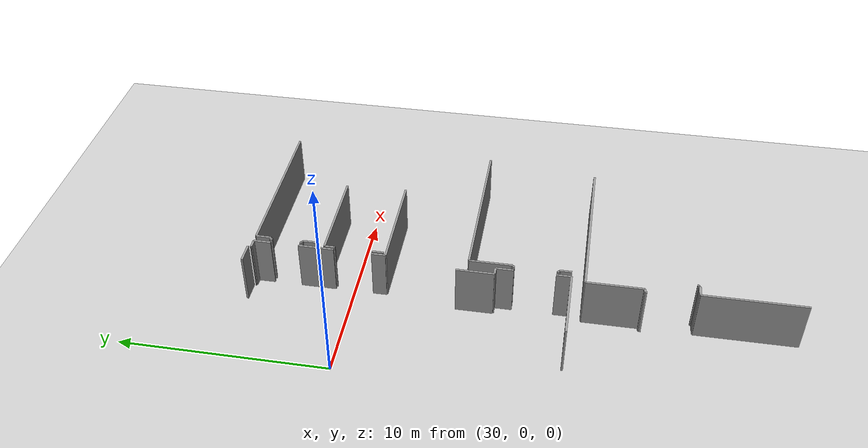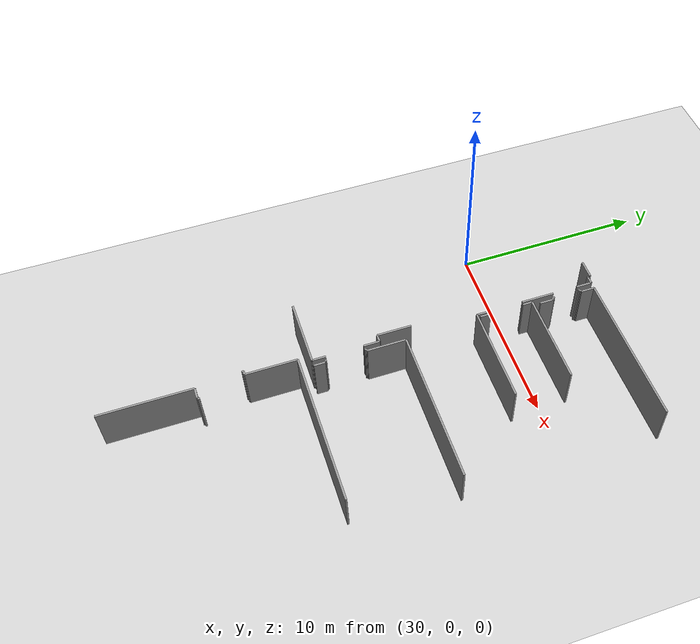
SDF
<sdf version="1.6">
 <world name="default">
  <model name="ground_plane">
   <static>1</static>
   <link name="link">
    <collision name="collision">
     <geometry><plane><normal>0 0 1</normal><size>100 100</size></plane></geometry>
     <surface><friction><ode><mu>100</mu><mu2>50</mu2></ode></friction></surface>
    </collision>
    <visual name="visual">
     <cast_shadows>0</cast_shadows>
     <geometry><plane><normal>0 0 1</normal><size>100 100</size></plane></geometry>
     <material>
      <script><uri>file://media/materials/scripts/gazebo.material</uri><name>Gazebo/Grey</name></script>
     </material>
    </visual>
   </link>
  </model>
  <model name="50055638">
   <static>1</static>
   <link name="Wall_280">
    <collision name="Wall_280_Collision">
     <geometry><box><size>1.80466322231 0.1 2.5</size></box></geometry>
     <pose>0.902331611157 0 1.25 0 0 0</pose>
    </collision>
    <visual name="Wall_280_Visual">
     <pose>0.902331611157 0 1.25 0 0 0</pose>
     <geometry><box><size>1.80466322231 0.1 2.5</size></box></geometry>
     <material>
      <script><uri>file://media/materials/scripts/gazebo.material</uri><name>Gazebo/Grey</name></script>
      <ambient>1 1 1 1</ambient>
     </material>
    </visual>
    <pose>105.416023233 -25.8159368069 0 0 0 -1.57079632679</pose>
   </link>
   <link name="Wall_281">
    <collision name="Wall_281_Collision">
     <geometry><box><size>0.398451947458 0.1 2.5</size></box></geometry>
     <pose>0.199225973729 0 1.25 0 0 0</pose>
    </collision>
    <visual name="Wall_281_Visual">
     <pose>0.199225973729 0 1.25 0 0 0</pose>
     <geometry><box><size>0.398451947458 0.1 2.5</size></box></geometry>
     <material>
      <script><uri>file://media/materials/scripts/gazebo.material</uri><name>Gazebo/Grey</name></script>
      <ambient>1 1 1 1</ambient>
     </material>
    </visual>
    <pose>105.416023233 -27.6206000292 0 0 0 0.0</pose>
   </link>
   <link name="Wall_282">
    <collision name="Wall_282_Collision">
     <geometry><box><size>0.851683094072 0.1 2.5</size></box></geometry>
     <pose>0.425841547036 0 1.25 0 0 0</pose>
    </collision>
    <visual name="Wall_282_Visual">
     <pose>0.425841547036 0 1.25 0 0 0</pose>
     <geometry><box><size>0.851683094072 0.1 2.5</size></box></geometry>
     <material>
      <script><uri>file://media/materials/scripts/gazebo.material</uri><name>Gazebo/Grey</name></script>
      <ambient>1 1 1 1</ambient>
     </material>
    </visual>
    <pose>105.814475181 -27.6206000292 0 0 0 -1.57079632679</pose>
   </link>
   <link name="Wall_283">
    <collision name="Wall_283_Collision">
     <geometry><box><size>0.707681162183 0.1 2.5</size></box></geometry>
     <pose>0.353840581092 0 1.25 0 0 0</pose>
    </collision>
    <visual name="Wall_283_Visual">
     <pose>0.353840581092 0 1.25 0 0 0</pose>
     <geometry><box><size>0.707681162183 0.1 2.5</size></box></geometry>
     <material>
      <script><uri>file://media/materials/scripts/gazebo.material</uri><name>Gazebo/Grey</name></script>
      <ambient>1 1 1 1</ambient>
     </material>
    </visual>
    <pose>105.814475181 -30.4191689068 0 0 0 -1.57079632679</pose>
   </link>
   <link name="Wall_284">
    <collision name="Wall_284_Collision">
     <geometry><box><size>3.56064794514 0.1 2.5</size></box></geometry>
     <pose>1.78032397257 0 1.25 0 0 0</pose>
    </collision>
    <visual name="Wall_284_Visual">
     <pose>1.78032397257 0 1.25 0 0 0</pose>
     <geometry><box><size>3.56064794514 0.1 2.5</size></box></geometry>
     <material>
      <script><uri>file://media/materials/scripts/gazebo.material</uri><name>Gazebo/Grey</name></script>
      <ambient>1 1 1 1</ambient>
     </material>
    </visual>
    <pose>105.814475181 -31.126850069 0 0 0 3.14159265359</pose>
   </link>
   <link name="Wall_479">
    <collision name="Wall_479_Collision">
     <geometry><box><size>4.81434172815 0.1 2.5</size></box></geometry>
     <pose>2.40717086408 0 1.25 0 0 0</pose>
    </collision>
    <visual name="Wall_479_Visual">
     <pose>2.40717086408 0 1.25 0 0 0</pose>
     <geometry><box><size>4.81434172815 0.1 2.5</size></box></geometry>
     <material>
      <script><uri>file://media/materials/scripts/gazebo.material</uri><name>Gazebo/Grey</name></script>
      <ambient>1 1 1 1</ambient>
     </material>
    </visual>
    <pose>105.537401737 -41.733170648 0 0 0 1.57079632679</pose>
   </link>
   <link name="Wall_480">
    <collision name="Wall_480_Collision">
     <geometry><box><size>0.582362623047 0.1 2.5</size></box></geometry>
     <pose>0.291181311523 0 1.25 0 0 0</pose>
    </collision>
    <visual name="Wall_480_Visual">
     <pose>0.291181311523 0 1.25 0 0 0</pose>
     <geometry><box><size>0.582362623047 0.1 2.5</size></box></geometry>
     <material>
      <script><uri>file://media/materials/scripts/gazebo.material</uri><name>Gazebo/Grey</name></script>
      <ambient>1 1 1 1</ambient>
     </material>
    </visual>
    <pose>105.537401737 -36.9188289199 0 0 0 0.0</pose>
   </link>
   <link name="Wall_481">
    <collision name="Wall_481_Collision">
     <geometry><box><size>0.0690141650621 0.1 2.5</size></box></geometry>
     <pose>0.034507082531 0 1.25 0 0 0</pose>
    </collision>
    <visual name="Wall_481_Visual">
     <pose>0.034507082531 0 1.25 0 0 0</pose>
     <geometry><box><size>0.0690141650621 0.1 2.5</size></box></geometry>
     <material>
      <script><uri>file://media/materials/scripts/gazebo.material</uri><name>Gazebo/Grey</name></script>
      <ambient>1 1 1 1</ambient>
     </material>
    </visual>
    <pose>106.11976436 -36.9188289199 0 0 0 1.57079632679</pose>
   </link>
   <link name="Wall_482">
    <collision name="Wall_482_Collision">
     <geometry><box><size>0.100534446711 0.1 2.5</size></box></geometry>
     <pose>0.0502672233555 0 1.25 0 0 0</pose>
    </collision>
    <visual name="Wall_482_Visual">
     <pose>0.0502672233555 0 1.25 0 0 0</pose>
     <geometry><box><size>0.100534446711 0.1 2.5</size></box></geometry>
     <material>
      <script><uri>file://media/materials/scripts/gazebo.material</uri><name>Gazebo/Grey</name></script>
      <ambient>1 1 1 1</ambient>
     </material>
    </visual>
    <pose>106.11976436 -36.8498147548 0 0 0 0.0</pose>
   </link>
   <link name="Wall_492">
    <collision name="Wall_492_Collision">
     <geometry><box><size>0.100280250891 0.1 2.5</size></box></geometry>
     <pose>0.0501401254456 0 1.25 0 0 0</pose>
    </collision>
    <visual name="Wall_492_Visual">
     <pose>0.0501401254456 0 1.25 0 0 0</pose>
     <geometry><box><size>0.100280250891 0.1 2.5</size></box></geometry>
     <material>
      <script><uri>file://media/materials/scripts/gazebo.material</uri><name>Gazebo/Grey</name></script>
      <ambient>1 1 1 1</ambient>
     </material>
    </visual>
    <pose>105.342179348 -34.555061992 0 0 0 1.57079632679</pose>
   </link>
   <link name="Wall_493">
    <collision name="Wall_493_Collision">
     <geometry><box><size>0.194459802109 0.1 2.5</size></box></geometry>
     <pose>0.0972299010543 0 1.25 0 0 0</pose>
    </collision>
    <visual name="Wall_493_Visual">
     <pose>0.0972299010543 0 1.25 0 0 0</pose>
     <geometry><box><size>0.194459802109 0.1 2.5</size></box></geometry>
     <material>
      <script><uri>file://media/materials/scripts/gazebo.material</uri><name>Gazebo/Grey</name></script>
      <ambient>1 1 1 1</ambient>
     </material>
    </visual>
    <pose>105.342179348 -34.4547817411 0 0 0 0.0</pose>
   </link>
   <link name="Wall_494">
    <collision name="Wall_494_Collision">
     <geometry><box><size>2.68557883566 0.1 2.5</size></box></geometry>
     <pose>1.34278941783 0 1.25 0 0 0</pose>
    </collision>
    <visual name="Wall_494_Visual">
     <pose>1.34278941783 0 1.25 0 0 0</pose>
     <geometry><box><size>2.68557883566 0.1 2.5</size></box></geometry>
     <material>
      <script><uri>file://media/materials/scripts/gazebo.material</uri><name>Gazebo/Grey</name></script>
      <ambient>1 1 1 1</ambient>
     </material>
    </visual>
    <pose>105.53663915 -34.4547817411 0 0 0 1.57079632679</pose>
   </link>
   <link name="Wall_495">
    <collision name="Wall_495_Collision">
     <geometry><box><size>8.06029524844 0.1 2.5</size></box></geometry>
     <pose>4.03014762422 0 1.25 0 0 0</pose>
    </collision>
    <visual name="Wall_495_Visual">
     <pose>4.03014762422 0 1.25 0 0 0</pose>
     <geometry><box><size>8.06029524844 0.1 2.5</size></box></geometry>
     <material>
      <script><uri>file://media/materials/scripts/gazebo.material</uri><name>Gazebo/Grey</name></script>
      <ambient>1 1 1 1</ambient>
     </material>
    </visual>
    <pose>105.53663915 -31.7692029055 0 0 0 0.0</pose>
   </link>
   <link name="Wall_500">
    <collision name="Wall_500_Collision">
     <geometry><box><size>0.582489720957 0.1 2.5</size></box></geometry>
     <pose>0.291244860478 0 1.25 0 0 0</pose>
    </collision>
    <visual name="Wall_500_Visual">
     <pose>0.291244860478 0 1.25 0 0 0</pose>
     <geometry><box><size>0.582489720957 0.1 2.5</size></box></geometry>
     <material>
      <script><uri>file://media/materials/scripts/gazebo.material</uri><name>Gazebo/Grey</name></script>
      <ambient>1 1 1 1</ambient>
     </material>
    </visual>
    <pose>106.144167159 -31.1263416773 0 0 0 1.57079632679</pose>
   </link>
   <link name="Wall_501">
    <collision name="Wall_501_Collision">
     <geometry><box><size>0.0879517536334 0.1 2.5</size></box></geometry>
     <pose>0.0439758768167 0 1.25 0 0 0</pose>
    </collision>
    <visual name="Wall_501_Visual">
     <pose>0.0439758768167 0 1.25 0 0 0</pose>
     <geometry><box><size>0.0879517536334 0.1 2.5</size></box></geometry>
     <material>
      <script><uri>file://media/materials/scripts/gazebo.material</uri><name>Gazebo/Grey</name></script>
      <ambient>1 1 1 1</ambient>
     </material>
    </visual>
    <pose>106.144167159 -30.5438519564 0 0 0 3.14159265359</pose>
   </link>
   <link name="Wall_502">
    <collision name="Wall_502_Collision">
     <geometry><box><size>0.104347384007 0.1 2.5</size></box></geometry>
     <pose>0.0521736920036 0 1.25 0 0 0</pose>
    </collision>
    <visual name="Wall_502_Visual">
     <pose>0.0521736920036 0 1.25 0 0 0</pose>
     <geometry><box><size>0.104347384007 0.1 2.5</size></box></geometry>
     <material>
      <script><uri>file://media/materials/scripts/gazebo.material</uri><name>Gazebo/Grey</name></script>
      <ambient>1 1 1 1</ambient>
     </material>
    </visual>
    <pose>106.056215406 -30.5438519564 0 0 0 1.57079632679</pose>
   </link>
   <link name="Wall_503">
    <collision name="Wall_503_Collision">
     <geometry><box><size>0.10116993626 0.1 2.5</size></box></geometry>
     <pose>0.0505849681302 0 1.25 0 0 0</pose>
    </collision>
    <visual name="Wall_503_Visual">
     <pose>0.0505849681302 0 1.25 0 0 0</pose>
     <geometry><box><size>0.10116993626 0.1 2.5</size></box></geometry>
     <material>
      <script><uri>file://media/materials/scripts/gazebo.material</uri><name>Gazebo/Grey</name></script>
      <ambient>1 1 1 1</ambient>
     </material>
    </visual>
    <pose>106.056215406 -28.4792735083 0 0 0 1.57079632679</pose>
   </link>
   <link name="Wall_504">
    <collision name="Wall_504_Collision">
     <geometry><box><size>0.0901124181013 0.1 2.5</size></box></geometry>
     <pose>0.0450562090506 0 1.25 0 0 0</pose>
    </collision>
    <visual name="Wall_504_Visual">
     <pose>0.0450562090506 0 1.25 0 0 0</pose>
     <geometry><box><size>0.0901124181013 0.1 2.5</size></box></geometry>
     <material>
      <script><uri>file://media/materials/scripts/gazebo.material</uri><name>Gazebo/Grey</name></script>
      <ambient>1 1 1 1</ambient>
     </material>
    </visual>
    <pose>106.056215406 -28.3781035721 0 0 0 0.0</pose>
   </link>
   <link name="Wall_505">
    <collision name="Wall_505_Collision">
     <geometry><box><size>2.04665764272 0.1 2.5</size></box></geometry>
     <pose>1.02332882136 0 1.25 0 0 0</pose>
    </collision>
    <visual name="Wall_505_Visual">
     <pose>1.02332882136 0 1.25 0 0 0</pose>
     <geometry><box><size>2.04665764272 0.1 2.5</size></box></geometry>
     <material>
      <script><uri>file://media/materials/scripts/gazebo.material</uri><name>Gazebo/Grey</name></script>
      <ambient>1 1 1 1</ambient>
     </material>
    </visual>
    <pose>106.146327824 -28.3781035721 0 0 0 1.57079632679</pose>
   </link>
   <link name="Wall_506">
    <collision name="Wall_506_Collision">
     <geometry><box><size>8.0377989184 0.1 2.5</size></box></geometry>
     <pose>4.0188994592 0 1.25 0 0 0</pose>
    </collision>
    <visual name="Wall_506_Visual">
     <pose>4.0188994592 0 1.25 0 0 0</pose>
     <geometry><box><size>8.0377989184 0.1 2.5</size></box></geometry>
     <material>
      <script><uri>file://media/materials/scripts/gazebo.material</uri><name>Gazebo/Grey</name></script>
      <ambient>1 1 1 1</ambient>
     </material>
    </visual>
    <pose>106.146327824 -26.3314459294 0 0 0 0.0</pose>
   </link>
   <link name="Wall_514">
    <collision name="Wall_514_Collision">
     <geometry><box><size>0.0319015753786 0.1 2.5</size></box></geometry>
     <pose>0.0159507876893 0 1.25 0 0 0</pose>
    </collision>
    <visual name="Wall_514_Visual">
     <pose>0.0159507876893 0 1.25 0 0 0</pose>
     <geometry><box><size>0.0319015753786 0.1 2.5</size></box></geometry>
     <material>
      <script><uri>file://media/materials/scripts/gazebo.material</uri><name>Gazebo/Grey</name></script>
      <ambient>1 1 1 1</ambient>
     </material>
    </visual>
    <pose>105.433562745 -15.9922851569 0 0 0 -1.57079632679</pose>
   </link>
   <link name="Wall_515">
    <collision name="Wall_515_Collision">
     <geometry><box><size>0.429082543738 0.1 2.5</size></box></geometry>
     <pose>0.214541271869 0 1.25 0 0 0</pose>
    </collision>
    <visual name="Wall_515_Visual">
     <pose>0.214541271869 0 1.25 0 0 0</pose>
     <geometry><box><size>0.429082543738 0.1 2.5</size></box></geometry>
     <material>
      <script><uri>file://media/materials/scripts/gazebo.material</uri><name>Gazebo/Grey</name></script>
      <ambient>1 1 1 1</ambient>
     </material>
    </visual>
    <pose>105.433562745 -16.0241867322 0 0 0 0.0</pose>
   </link>
   <link name="Wall_516">
    <collision name="Wall_516_Collision">
     <geometry><box><size>0.836304246977 0.1 2.5</size></box></geometry>
     <pose>0.418152123488 0 1.25 0 0 0</pose>
    </collision>
    <visual name="Wall_516_Visual">
     <pose>0.418152123488 0 1.25 0 0 0</pose>
     <geometry><box><size>0.836304246977 0.1 2.5</size></box></geometry>
     <material>
      <script><uri>file://media/materials/scripts/gazebo.material</uri><name>Gazebo/Grey</name></script>
      <ambient>1 1 1 1</ambient>
     </material>
    </visual>
    <pose>105.862645289 -16.0241867322 0 0 0 -1.57079632679</pose>
   </link>
   <link name="Wall_517">
    <collision name="Wall_517_Collision">
     <geometry><box><size>1.72840447639 0.1 2.5</size></box></geometry>
     <pose>0.864202238194 0 1.25 0 0 0</pose>
    </collision>
    <visual name="Wall_517_Visual">
     <pose>0.864202238194 0 1.25 0 0 0</pose>
     <geometry><box><size>1.72840447639 0.1 2.5</size></box></geometry>
     <material>
      <script><uri>file://media/materials/scripts/gazebo.material</uri><name>Gazebo/Grey</name></script>
      <ambient>1 1 1 1</ambient>
     </material>
    </visual>
    <pose>105.862645289 -18.194891935 0 0 0 -1.57079632679</pose>
   </link>
   <link name="Wall_518">
    <collision name="Wall_518_Collision">
     <geometry><box><size>0.675652488895 0.1 2.5</size></box></geometry>
     <pose>0.337826244447 0 1.25 0 0 0</pose>
    </collision>
    <visual name="Wall_518_Visual">
     <pose>0.337826244447 0 1.25 0 0 0</pose>
     <geometry><box><size>0.675652488895 0.1 2.5</size></box></geometry>
     <material>
      <script><uri>file://media/materials/scripts/gazebo.material</uri><name>Gazebo/Grey</name></script>
      <ambient>1 1 1 1</ambient>
     </material>
    </visual>
    <pose>105.862645289 -21.7442281662 0 0 0 -1.57079632679</pose>
   </link>
   <link name="Wall_519">
    <collision name="Wall_519_Collision">
     <geometry><box><size>5.06561429597 0.1 2.5</size></box></geometry>
     <pose>2.53280714799 0 1.25 0 0 0</pose>
    </collision>
    <visual name="Wall_519_Visual">
     <pose>2.53280714799 0 1.25 0 0 0</pose>
     <geometry><box><size>5.06561429597 0.1 2.5</size></box></geometry>
     <material>
      <script><uri>file://media/materials/scripts/gazebo.material</uri><name>Gazebo/Grey</name></script>
      <ambient>1 1 1 1</ambient>
     </material>
    </visual>
    <pose>105.862645289 -22.4198806551 0 0 0 0.0</pose>
   </link>
   <link name="Wall_525">
    <collision name="Wall_525_Collision">
     <geometry><box><size>0.552367516316 0.1 2.5</size></box></geometry>
     <pose>0.276183758158 0 1.25 0 0 0</pose>
    </collision>
    <visual name="Wall_525_Visual">
     <pose>0.276183758158 0 1.25 0 0 0</pose>
     <geometry><box><size>0.552367516316 0.1 2.5</size></box></geometry>
     <material>
      <script><uri>file://media/materials/scripts/gazebo.material</uri><name>Gazebo/Grey</name></script>
      <ambient>1 1 1 1</ambient>
     </material>
    </visual>
    <pose>106.03041453 -22.2960872908 0 0 0 1.57079632679</pose>
   </link>
   <link name="Wall_526">
    <collision name="Wall_526_Collision">
     <geometry><box><size>0.523516290775 0.1 2.5</size></box></geometry>
     <pose>0.261758145387 0 1.25 0 0 0</pose>
    </collision>
    <visual name="Wall_526_Visual">
     <pose>0.261758145387 0 1.25 0 0 0</pose>
     <geometry><box><size>0.523516290775 0.1 2.5</size></box></geometry>
     <material>
      <script><uri>file://media/materials/scripts/gazebo.material</uri><name>Gazebo/Grey</name></script>
      <ambient>1 1 1 1</ambient>
     </material>
    </visual>
    <pose>106.03041453 -19.9618070781 0 0 0 1.57079632679</pose>
   </link>
   <link name="Wall_527">
    <collision name="Wall_527_Collision">
     <geometry><box><size>4.75257214395 0.1 2.5</size></box></geometry>
     <pose>2.37628607198 0 1.25 0 0 0</pose>
    </collision>
    <visual name="Wall_527_Visual">
     <pose>2.37628607198 0 1.25 0 0 0</pose>
     <geometry><box><size>4.75257214395 0.1 2.5</size></box></geometry>
     <material>
      <script><uri>file://media/materials/scripts/gazebo.material</uri><name>Gazebo/Grey</name></script>
      <ambient>1 1 1 1</ambient>
     </material>
    </visual>
    <pose>106.03041453 -19.4382907873 0 0 0 0.0</pose>
   </link>
   <link name="Wall_531">
    <collision name="Wall_531_Collision">
     <geometry><box><size>0.739328541742 0.1 2.5</size></box></geometry>
     <pose>0.369664270871 0 1.25 0 0 0</pose>
    </collision>
    <visual name="Wall_531_Visual">
     <pose>0.369664270871 0 1.25 0 0 0</pose>
     <geometry><box><size>0.739328541742 0.1 2.5</size></box></geometry>
     <material>
      <script><uri>file://media/materials/scripts/gazebo.material</uri><name>Gazebo/Grey</name></script>
      <ambient>1 1 1 1</ambient>
     </material>
    </visual>
    <pose>106.228433073 -19.0702152403 0 0 0 1.57079632679</pose>
   </link>
   <link name="Wall_532">
    <collision name="Wall_532_Collision">
     <geometry><box><size>0.119980426922 0.1 2.5</size></box></geometry>
     <pose>0.0599902134609 0 1.25 0 0 0</pose>
    </collision>
    <visual name="Wall_532_Visual">
     <pose>0.0599902134609 0 1.25 0 0 0</pose>
     <geometry><box><size>0.119980426922 0.1 2.5</size></box></geometry>
     <material>
      <script><uri>file://media/materials/scripts/gazebo.material</uri><name>Gazebo/Grey</name></script>
      <ambient>1 1 1 1</ambient>
     </material>
    </visual>
    <pose>106.228433073 -18.3308866986 0 0 0 3.14159265359</pose>
   </link>
   <link name="Wall_533">
    <collision name="Wall_533_Collision">
     <geometry><box><size>0.113752629338 0.1 2.5</size></box></geometry>
     <pose>0.056876314669 0 1.25 0 0 0</pose>
    </collision>
    <visual name="Wall_533_Visual">
     <pose>0.056876314669 0 1.25 0 0 0</pose>
     <geometry><box><size>0.113752629338 0.1 2.5</size></box></geometry>
     <material>
      <script><uri>file://media/materials/scripts/gazebo.material</uri><name>Gazebo/Grey</name></script>
      <ambient>1 1 1 1</ambient>
     </material>
    </visual>
    <pose>106.108452646 -18.3308866986 0 0 0 1.57079632679</pose>
   </link>
   <link name="Wall_534">
    <collision name="Wall_534_Collision">
     <geometry><box><size>0.11222745442 0.1 2.5</size></box></geometry>
     <pose>0.0561137272098 0 1.25 0 0 0</pose>
    </collision>
    <visual name="Wall_534_Visual">
     <pose>0.0561137272098 0 1.25 0 0 0</pose>
     <geometry><box><size>0.11222745442 0.1 2.5</size></box></geometry>
     <material>
      <script><uri>file://media/materials/scripts/gazebo.material</uri><name>Gazebo/Grey</name></script>
      <ambient>1 1 1 1</ambient>
     </material>
    </visual>
    <pose>106.108452646 -16.8747259451 0 0 0 1.57079632679</pose>
   </link>
   <link name="Wall_535">
    <collision name="Wall_535_Collision">
     <geometry><box><size>0.114515216797 0.1 2.5</size></box></geometry>
     <pose>0.0572576083986 0 1.25 0 0 0</pose>
    </collision>
    <visual name="Wall_535_Visual">
     <pose>0.0572576083986 0 1.25 0 0 0</pose>
     <geometry><box><size>0.114515216797 0.1 2.5</size></box></geometry>
     <material>
      <script><uri>file://media/materials/scripts/gazebo.material</uri><name>Gazebo/Grey</name></script>
      <ambient>1 1 1 1</ambient>
     </material>
    </visual>
    <pose>106.108452646 -16.7624984907 0 0 0 0.0</pose>
   </link>
   <link name="Wall_536">
    <collision name="Wall_536_Collision">
     <geometry><box><size>0.727000044484 0.1 2.5</size></box></geometry>
     <pose>0.363500022242 0 1.25 0 0 0</pose>
    </collision>
    <visual name="Wall_536_Visual">
     <pose>0.363500022242 0 1.25 0 0 0</pose>
     <geometry><box><size>0.727000044484 0.1 2.5</size></box></geometry>
     <material>
      <script><uri>file://media/materials/scripts/gazebo.material</uri><name>Gazebo/Grey</name></script>
      <ambient>1 1 1 1</ambient>
     </material>
    </visual>
    <pose>106.222967863 -16.7624984907 0 0 0 1.57079632679</pose>
   </link>
   <link name="Wall_537">
    <collision name="Wall_537_Collision">
     <geometry><box><size>7.97768160703 0.1 2.5</size></box></geometry>
     <pose>3.98884080351 0 1.25 0 0 0</pose>
    </collision>
    <visual name="Wall_537_Visual">
     <pose>3.98884080351 0 1.25 0 0 0</pose>
     <geometry><box><size>7.97768160703 0.1 2.5</size></box></geometry>
     <material>
      <script><uri>file://media/materials/scripts/gazebo.material</uri><name>Gazebo/Grey</name></script>
      <ambient>1 1 1 1</ambient>
     </material>
    </visual>
    <pose>106.222967863 -16.0354984462 0 0 0 0.0</pose>
   </link>
   <link name="Wall_660">
    <collision name="Wall_660_Collision">
     <geometry><box><size>0.958318240457 0.1 2.5</size></box></geometry>
     <pose>0.479159120228 0 1.25 0 0 0</pose>
    </collision>
    <visual name="Wall_660_Visual">
     <pose>0.479159120228 0 1.25 0 0 0</pose>
     <geometry><box><size>0.958318240457 0.1 2.5</size></box></geometry>
     <material>
      <script><uri>file://media/materials/scripts/gazebo.material</uri><name>Gazebo/Grey</name></script>
      <ambient>1 1 1 1</ambient>
     </material>
    </visual>
    <pose>105.419709073 -15.8692543801 0 0 0 3.14159265359</pose>
   </link>
   <pose>-70.65 20.8744774687 0 0 0 0</pose>
  </model>
 </world>
</sdf>
